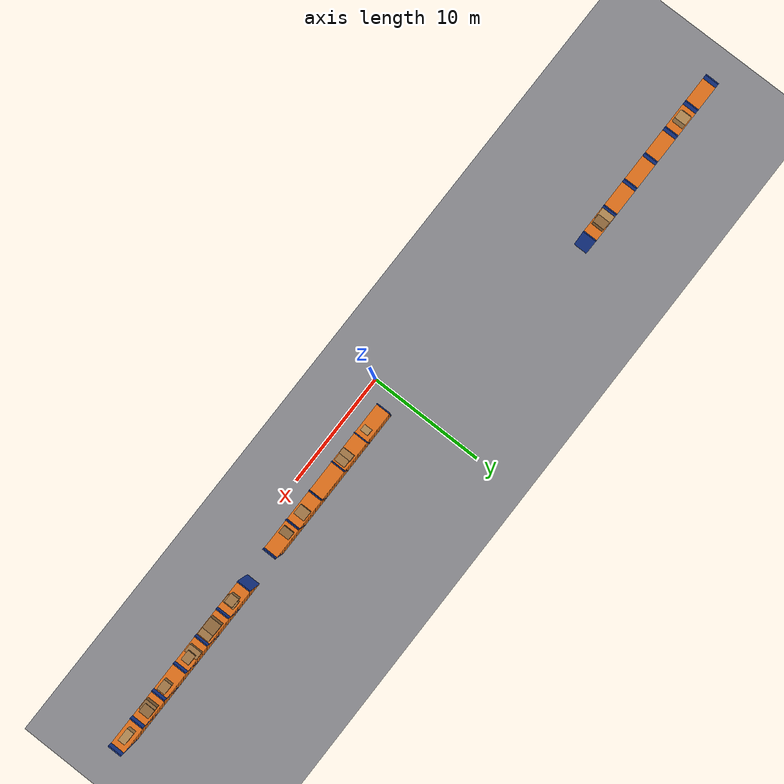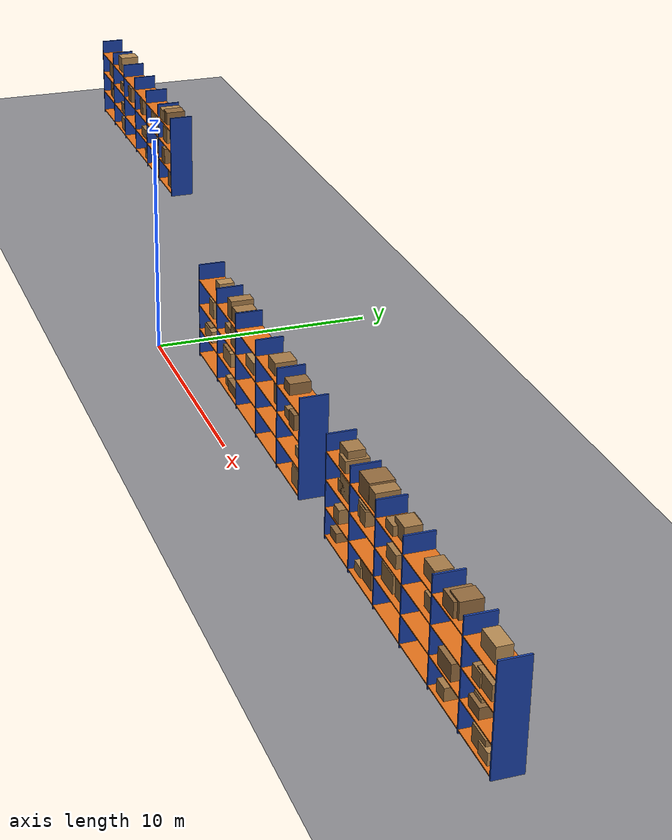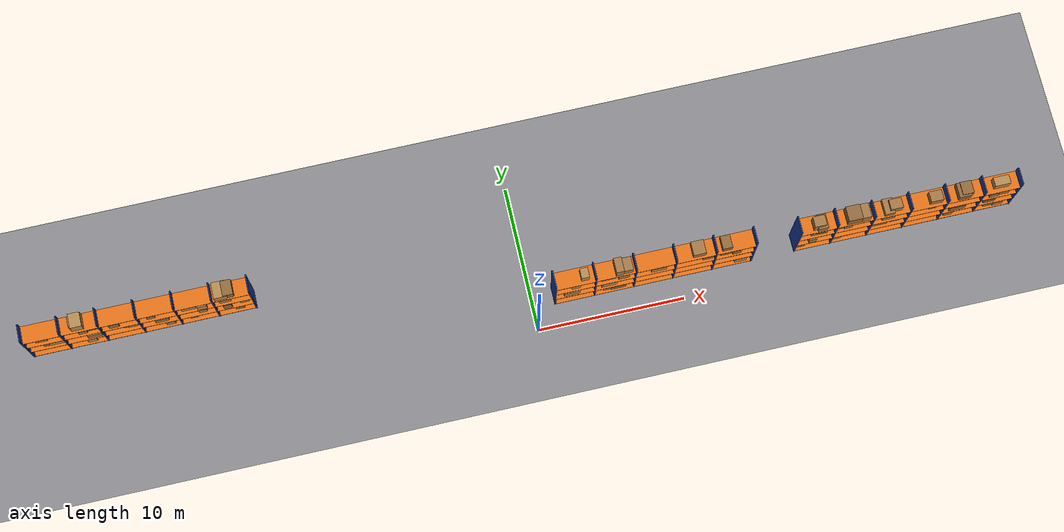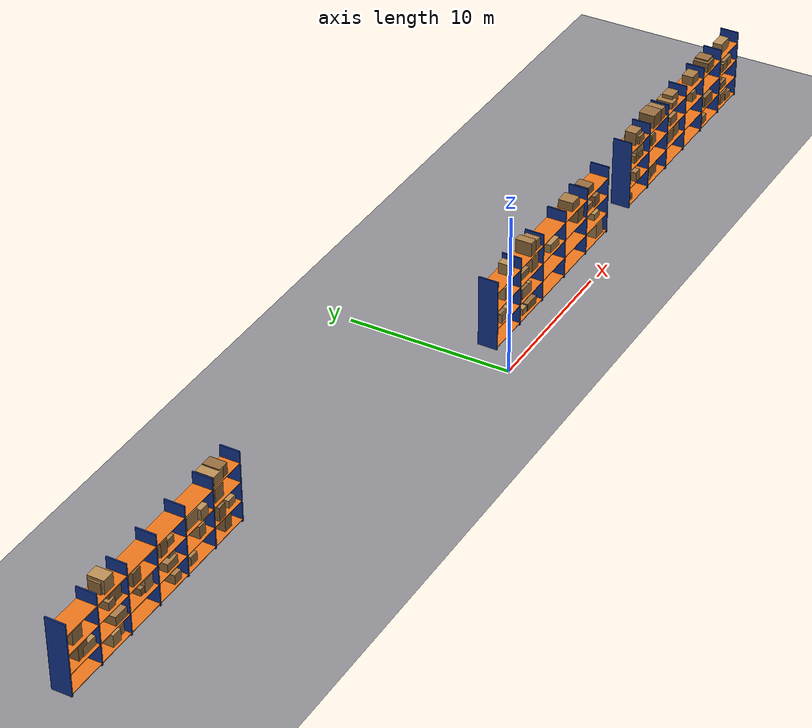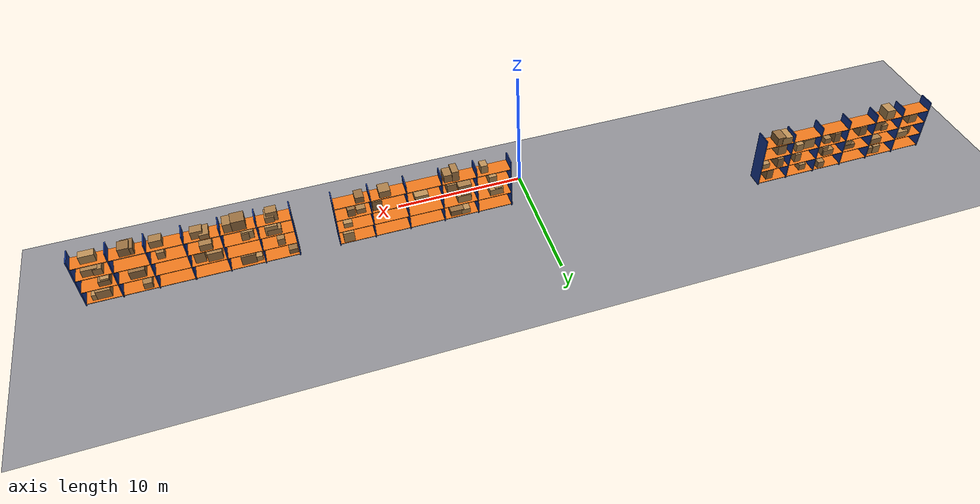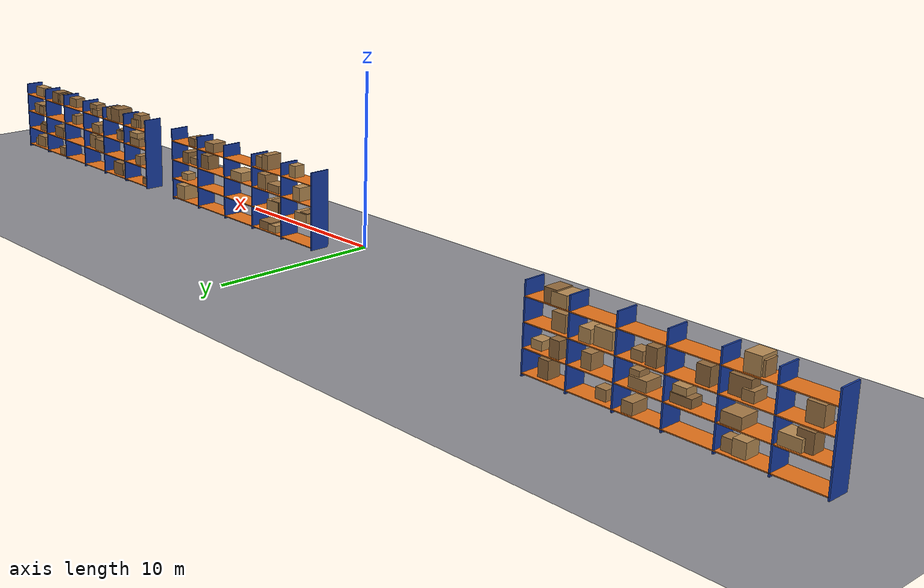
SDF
<sdf version="1.9">
 <world name="warehouse">
  <model name="ground_plane">
   <static>true</static>
   <link name="link">
    <collision name="collision">
     <geometry><plane><normal>0 0 1</normal><size>1 1</size></plane></geometry>
    </collision>
    <visual name="visual">
     <geometry><plane><normal>0 0 1</normal><size>200 100</size></plane></geometry>
     <material>
      <ambient>0.55 0.55 0.57 1</ambient>
      <diffuse>0.55 0.55 0.57 1</diffuse>
      <specular>0.1 0.1 0.1 1</specular>
     </material>
    </visual>
   </link>
  </model>
  <model name="rack18">
   <static>true</static>
   <link name="link">
    <collision name="up0_c">
     <pose>1.500 2.100 2.250 0 0 0</pose>
     <geometry><box><size>0.080 1.200 4.500</size></box></geometry>
    </collision>
    <visual name="up0_v">
     <pose>1.500 2.100 2.250 0 0 0</pose>
     <geometry><box><size>0.080 1.200 4.500</size></box></geometry>
     <material>
      <ambient>0.1 0.25 0.65 1</ambient>
      <diffuse>0.1 0.25 0.65 1</diffuse>
      <specular>0.1 0.1 0.1 1</specular>
     </material>
    </visual>
    <collision name="up1_c">
     <pose>4.200 2.100 2.250 0 0 0</pose>
     <geometry><box><size>0.080 1.200 4.500</size></box></geometry>
    </collision>
    <visual name="up1_v">
     <pose>4.200 2.100 2.250 0 0 0</pose>
     <geometry><box><size>0.080 1.200 4.500</size></box></geometry>
     <material>
      <ambient>0.1 0.25 0.65 1</ambient>
      <diffuse>0.1 0.25 0.65 1</diffuse>
      <specular>0.1 0.1 0.1 1</specular>
     </material>
    </visual>
    <collision name="up2_c">
     <pose>6.900 2.100 2.250 0 0 0</pose>
     <geometry><box><size>0.080 1.200 4.500</size></box></geometry>
    </collision>
    <visual name="up2_v">
     <pose>6.900 2.100 2.250 0 0 0</pose>
     <geometry><box><size>0.080 1.200 4.500</size></box></geometry>
     <material>
      <ambient>0.1 0.25 0.65 1</ambient>
      <diffuse>0.1 0.25 0.65 1</diffuse>
      <specular>0.1 0.1 0.1 1</specular>
     </material>
    </visual>
    <collision name="up3_c">
     <pose>9.600 2.100 2.250 0 0 0</pose>
     <geometry><box><size>0.080 1.200 4.500</size></box></geometry>
    </collision>
    <visual name="up3_v">
     <pose>9.600 2.100 2.250 0 0 0</pose>
     <geometry><box><size>0.080 1.200 4.500</size></box></geometry>
     <material>
      <ambient>0.1 0.25 0.65 1</ambient>
      <diffuse>0.1 0.25 0.65 1</diffuse>
      <specular>0.1 0.1 0.1 1</specular>
     </material>
    </visual>
    <collision name="up4_c">
     <pose>12.300 2.100 2.250 0 0 0</pose>
     <geometry><box><size>0.080 1.200 4.500</size></box></geometry>
    </collision>
    <visual name="up4_v">
     <pose>12.300 2.100 2.250 0 0 0</pose>
     <geometry><box><size>0.080 1.200 4.500</size></box></geometry>
     <material>
      <ambient>0.1 0.25 0.65 1</ambient>
      <diffuse>0.1 0.25 0.65 1</diffuse>
      <specular>0.1 0.1 0.1 1</specular>
     </material>
    </visual>
    <collision name="up5_c">
     <pose>15.000 2.100 2.250 0 0 0</pose>
     <geometry><box><size>0.080 1.200 4.500</size></box></geometry>
    </collision>
    <visual name="up5_v">
     <pose>15.000 2.100 2.250 0 0 0</pose>
     <geometry><box><size>0.080 1.200 4.500</size></box></geometry>
     <material>
      <ambient>0.1 0.25 0.65 1</ambient>
      <diffuse>0.1 0.25 0.65 1</diffuse>
      <specular>0.1 0.1 0.1 1</specular>
     </material>
    </visual>
    <collision name="sh0_c">
     <pose>8.250 2.100 0.150 0 0 0</pose>
     <geometry><box><size>13.500 1.200 0.050</size></box></geometry>
    </collision>
    <visual name="sh0_v">
     <pose>8.250 2.100 0.150 0 0 0</pose>
     <geometry><box><size>13.500 1.200 0.050</size></box></geometry>
     <material>
      <ambient>0.9 0.45 0.1 1</ambient>
      <diffuse>0.9 0.45 0.1 1</diffuse>
      <specular>0.1 0.1 0.1 1</specular>
     </material>
    </visual>
    <collision name="sh1_c">
     <pose>8.250 2.100 1.350 0 0 0</pose>
     <geometry><box><size>13.500 1.200 0.050</size></box></geometry>
    </collision>
    <visual name="sh1_v">
     <pose>8.250 2.100 1.350 0 0 0</pose>
     <geometry><box><size>13.500 1.200 0.050</size></box></geometry>
     <material>
      <ambient>0.9 0.45 0.1 1</ambient>
      <diffuse>0.9 0.45 0.1 1</diffuse>
      <specular>0.1 0.1 0.1 1</specular>
     </material>
    </visual>
    <collision name="sh2_c">
     <pose>8.250 2.100 2.550 0 0 0</pose>
     <geometry><box><size>13.500 1.200 0.050</size></box></geometry>
    </collision>
    <visual name="sh2_v">
     <pose>8.250 2.100 2.550 0 0 0</pose>
     <geometry><box><size>13.500 1.200 0.050</size></box></geometry>
     <material>
      <ambient>0.9 0.45 0.1 1</ambient>
      <diffuse>0.9 0.45 0.1 1</diffuse>
      <specular>0.1 0.1 0.1 1</specular>
     </material>
    </visual>
    <collision name="sh3_c">
     <pose>8.250 2.100 3.750 0 0 0</pose>
     <geometry><box><size>13.500 1.200 0.050</size></box></geometry>
    </collision>
    <visual name="sh3_v">
     <pose>8.250 2.100 3.750 0 0 0</pose>
     <geometry><box><size>13.500 1.200 0.050</size></box></geometry>
     <material>
      <ambient>0.9 0.45 0.1 1</ambient>
      <diffuse>0.9 0.45 0.1 1</diffuse>
      <specular>0.1 0.1 0.1 1</specular>
     </material>
    </visual>
    <collision name="c0_c">
     <pose>2.640 2.058 1.644 0 0 0</pose>
     <geometry><box><size>1.067 0.977 0.538</size></box></geometry>
    </collision>
    <visual name="c0_v">
     <pose>2.640 2.058 1.644 0 0 0</pose>
     <geometry><box><size>1.067 0.977 0.538</size></box></geometry>
     <material>
      <ambient>0.72 0.55 0.33 1</ambient>
      <diffuse>0.72 0.55 0.33 1</diffuse>
      <specular>0.1 0.1 0.1 1</specular>
     </material>
    </visual>
    <collision name="c1_c">
     <pose>2.445 2.053 1.662 0 0 0</pose>
     <geometry><box><size>0.634 0.836 0.573</size></box></geometry>
    </collision>
    <visual name="c1_v">
     <pose>2.445 2.053 1.662 0 0 0</pose>
     <geometry><box><size>0.634 0.836 0.573</size></box></geometry>
     <material>
      <ambient>0.58 0.42 0.24 1</ambient>
      <diffuse>0.58 0.42 0.24 1</diffuse>
      <specular>0.1 0.1 0.1 1</specular>
     </material>
    </visual>
    <collision name="c2_c">
     <pose>2.917 2.135 2.968 0 0 0</pose>
     <geometry><box><size>0.603 0.977 0.787</size></box></geometry>
    </collision>
    <visual name="c2_v">
     <pose>2.917 2.135 2.968 0 0 0</pose>
     <geometry><box><size>0.603 0.977 0.787</size></box></geometry>
     <material>
      <ambient>0.72 0.55 0.33 1</ambient>
      <diffuse>0.72 0.55 0.33 1</diffuse>
      <specular>0.1 0.1 0.1 1</specular>
     </material>
    </visual>
    <collision name="c3_c">
     <pose>3.520 2.097 4.122 0 0 0</pose>
     <geometry><box><size>0.541 0.676 0.694</size></box></geometry>
    </collision>
    <visual name="c3_v">
     <pose>3.520 2.097 4.122 0 0 0</pose>
     <geometry><box><size>0.541 0.676 0.694</size></box></geometry>
     <material>
      <ambient>0.72 0.55 0.33 1</ambient>
      <diffuse>0.72 0.55 0.33 1</diffuse>
      <specular>0.1 0.1 0.1 1</specular>
     </material>
    </visual>
    <collision name="c4_c">
     <pose>5.860 2.099 0.416 0 0 0</pose>
     <geometry><box><size>1.050 0.923 0.483</size></box></geometry>
    </collision>
    <visual name="c4_v">
     <pose>5.860 2.099 0.416 0 0 0</pose>
     <geometry><box><size>1.050 0.923 0.483</size></box></geometry>
     <material>
      <ambient>0.58 0.42 0.24 1</ambient>
      <diffuse>0.58 0.42 0.24 1</diffuse>
      <specular>0.1 0.1 0.1 1</specular>
     </material>
    </visual>
    <collision name="c5_c">
     <pose>5.185 2.129 0.384 0 0 0</pose>
     <geometry><box><size>0.685 0.879 0.418</size></box></geometry>
    </collision>
    <visual name="c5_v">
     <pose>5.185 2.129 0.384 0 0 0</pose>
     <geometry><box><size>0.685 0.879 0.418</size></box></geometry>
     <material>
      <ambient>0.72 0.55 0.33 1</ambient>
      <diffuse>0.72 0.55 0.33 1</diffuse>
      <specular>0.1 0.1 0.1 1</specular>
     </material>
    </visual>
    <collision name="c6_c">
     <pose>5.054 2.054 1.705 0 0 0</pose>
     <geometry><box><size>0.786 0.818 0.661</size></box></geometry>
    </collision>
    <visual name="c6_v">
     <pose>5.054 2.054 1.705 0 0 0</pose>
     <geometry><box><size>0.786 0.818 0.661</size></box></geometry>
     <material>
      <ambient>0.58 0.42 0.24 1</ambient>
      <diffuse>0.58 0.42 0.24 1</diffuse>
      <specular>0.1 0.1 0.1 1</specular>
     </material>
    </visual>
    <collision name="c7_c">
     <pose>5.208 2.079 1.699 0 0 0</pose>
     <geometry><box><size>1.051 0.887 0.649</size></box></geometry>
    </collision>
    <visual name="c7_v">
     <pose>5.208 2.079 1.699 0 0 0</pose>
     <geometry><box><size>1.051 0.887 0.649</size></box></geometry>
     <material>
      <ambient>0.72 0.55 0.33 1</ambient>
      <diffuse>0.72 0.55 0.33 1</diffuse>
      <specular>0.1 0.1 0.1 1</specular>
     </material>
    </visual>
    <collision name="c8_c">
     <pose>6.139 2.099 3.010 0 0 0</pose>
     <geometry><box><size>0.732 0.937 0.870</size></box></geometry>
    </collision>
    <visual name="c8_v">
     <pose>6.139 2.099 3.010 0 0 0</pose>
     <geometry><box><size>0.732 0.937 0.870</size></box></geometry>
     <material>
      <ambient>0.65 0.48 0.28 1</ambient>
      <diffuse>0.65 0.48 0.28 1</diffuse>
      <specular>0.1 0.1 0.1 1</specular>
     </material>
    </visual>
    <collision name="c9_c">
     <pose>5.119 2.143 2.798 0 0 0</pose>
     <geometry><box><size>1.037 0.792 0.446</size></box></geometry>
    </collision>
    <visual name="c9_v">
     <pose>5.119 2.143 2.798 0 0 0</pose>
     <geometry><box><size>1.037 0.792 0.446</size></box></geometry>
     <material>
      <ambient>0.65 0.48 0.28 1</ambient>
      <diffuse>0.65 0.48 0.28 1</diffuse>
      <specular>0.1 0.1 0.1 1</specular>
     </material>
    </visual>
    <collision name="c10_c">
     <pose>5.799 2.082 4.214 0 0 0</pose>
     <geometry><box><size>0.524 0.998 0.878</size></box></geometry>
    </collision>
    <visual name="c10_v">
     <pose>5.799 2.082 4.214 0 0 0</pose>
     <geometry><box><size>0.524 0.998 0.878</size></box></geometry>
     <material>
      <ambient>0.65 0.48 0.28 1</ambient>
      <diffuse>0.65 0.48 0.28 1</diffuse>
      <specular>0.1 0.1 0.1 1</specular>
     </material>
    </visual>
    <collision name="c11_c">
     <pose>6.335 2.074 4.105 0 0 0</pose>
     <geometry><box><size>0.707 0.912 0.660</size></box></geometry>
    </collision>
    <visual name="c11_v">
     <pose>6.335 2.074 4.105 0 0 0</pose>
     <geometry><box><size>0.707 0.912 0.660</size></box></geometry>
     <material>
      <ambient>0.65 0.48 0.28 1</ambient>
      <diffuse>0.65 0.48 0.28 1</diffuse>
      <specular>0.1 0.1 0.1 1</specular>
     </material>
    </visual>
    <collision name="c12_c">
     <pose>8.499 2.133 2.845 0 0 0</pose>
     <geometry><box><size>1.036 1.040 0.541</size></box></geometry>
    </collision>
    <visual name="c12_v">
     <pose>8.499 2.133 2.845 0 0 0</pose>
     <geometry><box><size>1.036 1.040 0.541</size></box></geometry>
     <material>
      <ambient>0.72 0.55 0.33 1</ambient>
      <diffuse>0.72 0.55 0.33 1</diffuse>
      <specular>0.1 0.1 0.1 1</specular>
     </material>
    </visual>
    <collision name="c13_c">
     <pose>11.834 2.083 3.002 0 0 0</pose>
     <geometry><box><size>0.728 0.818 0.855</size></box></geometry>
    </collision>
    <visual name="c13_v">
     <pose>11.834 2.083 3.002 0 0 0</pose>
     <geometry><box><size>0.728 0.818 0.855</size></box></geometry>
     <material>
      <ambient>0.58 0.42 0.24 1</ambient>
      <diffuse>0.58 0.42 0.24 1</diffuse>
      <specular>0.1 0.1 0.1 1</specular>
     </material>
    </visual>
    <collision name="c14_c">
     <pose>11.172 2.137 4.059 0 0 0</pose>
     <geometry><box><size>0.848 0.937 0.568</size></box></geometry>
    </collision>
    <visual name="c14_v">
     <pose>11.172 2.137 4.059 0 0 0</pose>
     <geometry><box><size>0.848 0.937 0.568</size></box></geometry>
     <material>
      <ambient>0.65 0.48 0.28 1</ambient>
      <diffuse>0.65 0.48 0.28 1</diffuse>
      <specular>0.1 0.1 0.1 1</specular>
     </material>
    </visual>
    <collision name="c15_c">
     <pose>14.270 2.130 0.612 0 0 0</pose>
     <geometry><box><size>0.810 1.017 0.875</size></box></geometry>
    </collision>
    <visual name="c15_v">
     <pose>14.270 2.130 0.612 0 0 0</pose>
     <geometry><box><size>0.810 1.017 0.875</size></box></geometry>
     <material>
      <ambient>0.72 0.55 0.33 1</ambient>
      <diffuse>0.72 0.55 0.33 1</diffuse>
      <specular>0.1 0.1 0.1 1</specular>
     </material>
    </visual>
    <collision name="c16_c">
     <pose>14.169 2.068 1.583 0 0 0</pose>
     <geometry><box><size>0.653 0.601 0.416</size></box></geometry>
    </collision>
    <visual name="c16_v">
     <pose>14.169 2.068 1.583 0 0 0</pose>
     <geometry><box><size>0.653 0.601 0.416</size></box></geometry>
     <material>
      <ambient>0.72 0.55 0.33 1</ambient>
      <diffuse>0.72 0.55 0.33 1</diffuse>
      <specular>0.1 0.1 0.1 1</specular>
     </material>
    </visual>
    <collision name="c17_c">
     <pose>13.061 2.075 2.788 0 0 0</pose>
     <geometry><box><size>0.683 0.749 0.427</size></box></geometry>
    </collision>
    <visual name="c17_v">
     <pose>13.061 2.075 2.788 0 0 0</pose>
     <geometry><box><size>0.683 0.749 0.427</size></box></geometry>
     <material>
      <ambient>0.65 0.48 0.28 1</ambient>
      <diffuse>0.65 0.48 0.28 1</diffuse>
      <specular>0.1 0.1 0.1 1</specular>
     </material>
    </visual>
    <collision name="c18_c">
     <pose>13.779 2.080 2.913 0 0 0</pose>
     <geometry><box><size>0.576 0.936 0.675</size></box></geometry>
    </collision>
    <visual name="c18_v">
     <pose>13.779 2.080 2.913 0 0 0</pose>
     <geometry><box><size>0.576 0.936 0.675</size></box></geometry>
     <material>
      <ambient>0.58 0.42 0.24 1</ambient>
      <diffuse>0.58 0.42 0.24 1</diffuse>
      <specular>0.1 0.1 0.1 1</specular>
     </material>
    </visual>
    <collision name="c19_c">
     <pose>13.050 2.120 4.025 0 0 0</pose>
     <geometry><box><size>0.654 0.899 0.500</size></box></geometry>
    </collision>
    <visual name="c19_v">
     <pose>13.050 2.120 4.025 0 0 0</pose>
     <geometry><box><size>0.654 0.899 0.500</size></box></geometry>
     <material>
      <ambient>0.58 0.42 0.24 1</ambient>
      <diffuse>0.58 0.42 0.24 1</diffuse>
      <specular>0.1 0.1 0.1 1</specular>
     </material>
    </visual>
   </link>
  </model>
  <model name="rack19">
   <static>true</static>
   <link name="link">
    <collision name="up0_c">
     <pose>18.000 2.100 2.250 0 0 0</pose>
     <geometry><box><size>0.080 1.200 4.500</size></box></geometry>
    </collision>
    <visual name="up0_v">
     <pose>18.000 2.100 2.250 0 0 0</pose>
     <geometry><box><size>0.080 1.200 4.500</size></box></geometry>
     <material>
      <ambient>0.1 0.25 0.65 1</ambient>
      <diffuse>0.1 0.25 0.65 1</diffuse>
      <specular>0.1 0.1 0.1 1</specular>
     </material>
    </visual>
    <collision name="up1_c">
     <pose>20.500 2.100 2.250 0 0 0</pose>
     <geometry><box><size>0.080 1.200 4.500</size></box></geometry>
    </collision>
    <visual name="up1_v">
     <pose>20.500 2.100 2.250 0 0 0</pose>
     <geometry><box><size>0.080 1.200 4.500</size></box></geometry>
     <material>
      <ambient>0.1 0.25 0.65 1</ambient>
      <diffuse>0.1 0.25 0.65 1</diffuse>
      <specular>0.1 0.1 0.1 1</specular>
     </material>
    </visual>
    <collision name="up2_c">
     <pose>23.000 2.100 2.250 0 0 0</pose>
     <geometry><box><size>0.080 1.200 4.500</size></box></geometry>
    </collision>
    <visual name="up2_v">
     <pose>23.000 2.100 2.250 0 0 0</pose>
     <geometry><box><size>0.080 1.200 4.500</size></box></geometry>
     <material>
      <ambient>0.1 0.25 0.65 1</ambient>
      <diffuse>0.1 0.25 0.65 1</diffuse>
      <specular>0.1 0.1 0.1 1</specular>
     </material>
    </visual>
    <collision name="up3_c">
     <pose>25.500 2.100 2.250 0 0 0</pose>
     <geometry><box><size>0.080 1.200 4.500</size></box></geometry>
    </collision>
    <visual name="up3_v">
     <pose>25.500 2.100 2.250 0 0 0</pose>
     <geometry><box><size>0.080 1.200 4.500</size></box></geometry>
     <material>
      <ambient>0.1 0.25 0.65 1</ambient>
      <diffuse>0.1 0.25 0.65 1</diffuse>
      <specular>0.1 0.1 0.1 1</specular>
     </material>
    </visual>
    <collision name="up4_c">
     <pose>28.000 2.100 2.250 0 0 0</pose>
     <geometry><box><size>0.080 1.200 4.500</size></box></geometry>
    </collision>
    <visual name="up4_v">
     <pose>28.000 2.100 2.250 0 0 0</pose>
     <geometry><box><size>0.080 1.200 4.500</size></box></geometry>
     <material>
      <ambient>0.1 0.25 0.65 1</ambient>
      <diffuse>0.1 0.25 0.65 1</diffuse>
      <specular>0.1 0.1 0.1 1</specular>
     </material>
    </visual>
    <collision name="up5_c">
     <pose>30.500 2.100 2.250 0 0 0</pose>
     <geometry><box><size>0.080 1.200 4.500</size></box></geometry>
    </collision>
    <visual name="up5_v">
     <pose>30.500 2.100 2.250 0 0 0</pose>
     <geometry><box><size>0.080 1.200 4.500</size></box></geometry>
     <material>
      <ambient>0.1 0.25 0.65 1</ambient>
      <diffuse>0.1 0.25 0.65 1</diffuse>
      <specular>0.1 0.1 0.1 1</specular>
     </material>
    </visual>
    <collision name="up6_c">
     <pose>33.000 2.100 2.250 0 0 0</pose>
     <geometry><box><size>0.080 1.200 4.500</size></box></geometry>
    </collision>
    <visual name="up6_v">
     <pose>33.000 2.100 2.250 0 0 0</pose>
     <geometry><box><size>0.080 1.200 4.500</size></box></geometry>
     <material>
      <ambient>0.1 0.25 0.65 1</ambient>
      <diffuse>0.1 0.25 0.65 1</diffuse>
      <specular>0.1 0.1 0.1 1</specular>
     </material>
    </visual>
    <collision name="sh0_c">
     <pose>25.500 2.100 0.150 0 0 0</pose>
     <geometry><box><size>15.000 1.200 0.050</size></box></geometry>
    </collision>
    <visual name="sh0_v">
     <pose>25.500 2.100 0.150 0 0 0</pose>
     <geometry><box><size>15.000 1.200 0.050</size></box></geometry>
     <material>
      <ambient>0.9 0.45 0.1 1</ambient>
      <diffuse>0.9 0.45 0.1 1</diffuse>
      <specular>0.1 0.1 0.1 1</specular>
     </material>
    </visual>
    <collision name="sh1_c">
     <pose>25.500 2.100 1.350 0 0 0</pose>
     <geometry><box><size>15.000 1.200 0.050</size></box></geometry>
    </collision>
    <visual name="sh1_v">
     <pose>25.500 2.100 1.350 0 0 0</pose>
     <geometry><box><size>15.000 1.200 0.050</size></box></geometry>
     <material>
      <ambient>0.9 0.45 0.1 1</ambient>
      <diffuse>0.9 0.45 0.1 1</diffuse>
      <specular>0.1 0.1 0.1 1</specular>
     </material>
    </visual>
    <collision name="sh2_c">
     <pose>25.500 2.100 2.550 0 0 0</pose>
     <geometry><box><size>15.000 1.200 0.050</size></box></geometry>
    </collision>
    <visual name="sh2_v">
     <pose>25.500 2.100 2.550 0 0 0</pose>
     <geometry><box><size>15.000 1.200 0.050</size></box></geometry>
     <material>
      <ambient>0.9 0.45 0.1 1</ambient>
      <diffuse>0.9 0.45 0.1 1</diffuse>
      <specular>0.1 0.1 0.1 1</specular>
     </material>
    </visual>
    <collision name="sh3_c">
     <pose>25.500 2.100 3.750 0 0 0</pose>
     <geometry><box><size>15.000 1.200 0.050</size></box></geometry>
    </collision>
    <visual name="sh3_v">
     <pose>25.500 2.100 3.750 0 0 0</pose>
     <geometry><box><size>15.000 1.200 0.050</size></box></geometry>
     <material>
      <ambient>0.9 0.45 0.1 1</ambient>
      <diffuse>0.9 0.45 0.1 1</diffuse>
      <specular>0.1 0.1 0.1 1</specular>
     </material>
    </visual>
    <collision name="c0_c">
     <pose>18.423 2.092 0.379 0 0 0</pose>
     <geometry><box><size>0.632 0.803 0.409</size></box></geometry>
    </collision>
    <visual name="c0_v">
     <pose>18.423 2.092 0.379 0 0 0</pose>
     <geometry><box><size>0.632 0.803 0.409</size></box></geometry>
     <material>
      <ambient>0.58 0.42 0.24 1</ambient>
      <diffuse>0.58 0.42 0.24 1</diffuse>
      <specular>0.1 0.1 0.1 1</specular>
     </material>
    </visual>
    <collision name="c1_c">
     <pose>19.099 2.066 1.674 0 0 0</pose>
     <geometry><box><size>0.532 1.059 0.598</size></box></geometry>
    </collision>
    <visual name="c1_v">
     <pose>19.099 2.066 1.674 0 0 0</pose>
     <geometry><box><size>0.532 1.059 0.598</size></box></geometry>
     <material>
      <ambient>0.65 0.48 0.28 1</ambient>
      <diffuse>0.65 0.48 0.28 1</diffuse>
      <specular>0.1 0.1 0.1 1</specular>
     </material>
    </visual>
    <collision name="c2_c">
     <pose>19.373 2.132 2.823 0 0 0</pose>
     <geometry><box><size>1.011 0.932 0.496</size></box></geometry>
    </collision>
    <visual name="c2_v">
     <pose>19.373 2.132 2.823 0 0 0</pose>
     <geometry><box><size>1.011 0.932 0.496</size></box></geometry>
     <material>
      <ambient>0.65 0.48 0.28 1</ambient>
      <diffuse>0.65 0.48 0.28 1</diffuse>
      <specular>0.1 0.1 0.1 1</specular>
     </material>
    </visual>
    <collision name="c3_c">
     <pose>19.547 2.121 2.998 0 0 0</pose>
     <geometry><box><size>0.903 0.910 0.847</size></box></geometry>
    </collision>
    <visual name="c3_v">
     <pose>19.547 2.121 2.998 0 0 0</pose>
     <geometry><box><size>0.903 0.910 0.847</size></box></geometry>
     <material>
      <ambient>0.72 0.55 0.33 1</ambient>
      <diffuse>0.72 0.55 0.33 1</diffuse>
      <specular>0.1 0.1 0.1 1</specular>
     </material>
    </visual>
    <collision name="c4_c">
     <pose>19.306 2.052 4.190 0 0 0</pose>
     <geometry><box><size>0.800 0.709 0.830</size></box></geometry>
    </collision>
    <visual name="c4_v">
     <pose>19.306 2.052 4.190 0 0 0</pose>
     <geometry><box><size>0.800 0.709 0.830</size></box></geometry>
     <material>
      <ambient>0.65 0.48 0.28 1</ambient>
      <diffuse>0.65 0.48 0.28 1</diffuse>
      <specular>0.1 0.1 0.1 1</specular>
     </material>
    </visual>
    <collision name="c5_c">
     <pose>19.501 2.053 4.030 0 0 0</pose>
     <geometry><box><size>0.665 0.969 0.510</size></box></geometry>
    </collision>
    <visual name="c5_v">
     <pose>19.501 2.053 4.030 0 0 0</pose>
     <geometry><box><size>0.665 0.969 0.510</size></box></geometry>
     <material>
      <ambient>0.65 0.48 0.28 1</ambient>
      <diffuse>0.65 0.48 0.28 1</diffuse>
      <specular>0.1 0.1 0.1 1</specular>
     </material>
    </visual>
    <collision name="c6_c">
     <pose>20.969 2.065 0.385 0 0 0</pose>
     <geometry><box><size>0.627 0.731 0.421</size></box></geometry>
    </collision>
    <visual name="c6_v">
     <pose>20.969 2.065 0.385 0 0 0</pose>
     <geometry><box><size>0.627 0.731 0.421</size></box></geometry>
     <material>
      <ambient>0.72 0.55 0.33 1</ambient>
      <diffuse>0.72 0.55 0.33 1</diffuse>
      <specular>0.1 0.1 0.1 1</specular>
     </material>
    </visual>
    <collision name="c7_c">
     <pose>21.633 2.136 0.588 0 0 0</pose>
     <geometry><box><size>1.063 0.751 0.826</size></box></geometry>
    </collision>
    <visual name="c7_v">
     <pose>21.633 2.136 0.588 0 0 0</pose>
     <geometry><box><size>1.063 0.751 0.826</size></box></geometry>
     <material>
      <ambient>0.58 0.42 0.24 1</ambient>
      <diffuse>0.58 0.42 0.24 1</diffuse>
      <specular>0.1 0.1 0.1 1</specular>
     </material>
    </visual>
    <collision name="c8_c">
     <pose>21.209 2.056 2.920 0 0 0</pose>
     <geometry><box><size>0.790 0.676 0.690</size></box></geometry>
    </collision>
    <visual name="c8_v">
     <pose>21.209 2.056 2.920 0 0 0</pose>
     <geometry><box><size>0.790 0.676 0.690</size></box></geometry>
     <material>
      <ambient>0.72 0.55 0.33 1</ambient>
      <diffuse>0.72 0.55 0.33 1</diffuse>
      <specular>0.1 0.1 0.1 1</specular>
     </material>
    </visual>
    <collision name="c9_c">
     <pose>21.412 2.077 2.888 0 0 0</pose>
     <geometry><box><size>0.545 0.847 0.627</size></box></geometry>
    </collision>
    <visual name="c9_v">
     <pose>21.412 2.077 2.888 0 0 0</pose>
     <geometry><box><size>0.545 0.847 0.627</size></box></geometry>
     <material>
      <ambient>0.65 0.48 0.28 1</ambient>
      <diffuse>0.65 0.48 0.28 1</diffuse>
      <specular>0.1 0.1 0.1 1</specular>
     </material>
    </visual>
    <collision name="c10_c">
     <pose>21.648 2.087 4.202 0 0 0</pose>
     <geometry><box><size>0.971 1.008 0.854</size></box></geometry>
    </collision>
    <visual name="c10_v">
     <pose>21.648 2.087 4.202 0 0 0</pose>
     <geometry><box><size>0.971 1.008 0.854</size></box></geometry>
     <material>
      <ambient>0.58 0.42 0.24 1</ambient>
      <diffuse>0.58 0.42 0.24 1</diffuse>
      <specular>0.1 0.1 0.1 1</specular>
     </material>
    </visual>
    <collision name="c11_c">
     <pose>22.245 2.079 4.160 0 0 0</pose>
     <geometry><box><size>0.932 0.980 0.771</size></box></geometry>
    </collision>
    <visual name="c11_v">
     <pose>22.245 2.079 4.160 0 0 0</pose>
     <geometry><box><size>0.932 0.980 0.771</size></box></geometry>
     <material>
      <ambient>0.65 0.48 0.28 1</ambient>
      <diffuse>0.65 0.48 0.28 1</diffuse>
      <specular>0.1 0.1 0.1 1</specular>
     </material>
    </visual>
    <collision name="c12_c">
     <pose>23.778 2.137 1.751 0 0 0</pose>
     <geometry><box><size>1.048 0.884 0.753</size></box></geometry>
    </collision>
    <visual name="c12_v">
     <pose>23.778 2.137 1.751 0 0 0</pose>
     <geometry><box><size>1.048 0.884 0.753</size></box></geometry>
     <material>
      <ambient>0.65 0.48 0.28 1</ambient>
      <diffuse>0.65 0.48 0.28 1</diffuse>
      <specular>0.1 0.1 0.1 1</specular>
     </material>
    </visual>
    <collision name="c13_c">
     <pose>24.803 2.098 1.825 0 0 0</pose>
     <geometry><box><size>0.760 0.701 0.899</size></box></geometry>
    </collision>
    <visual name="c13_v">
     <pose>24.803 2.098 1.825 0 0 0</pose>
     <geometry><box><size>0.760 0.701 0.899</size></box></geometry>
     <material>
      <ambient>0.65 0.48 0.28 1</ambient>
      <diffuse>0.65 0.48 0.28 1</diffuse>
      <specular>0.1 0.1 0.1 1</specular>
     </material>
    </visual>
    <collision name="c14_c">
     <pose>24.164 2.127 2.856 0 0 0</pose>
     <geometry><box><size>0.872 0.946 0.562</size></box></geometry>
    </collision>
    <visual name="c14_v">
     <pose>24.164 2.127 2.856 0 0 0</pose>
     <geometry><box><size>0.872 0.946 0.562</size></box></geometry>
     <material>
      <ambient>0.65 0.48 0.28 1</ambient>
      <diffuse>0.65 0.48 0.28 1</diffuse>
      <specular>0.1 0.1 0.1 1</specular>
     </material>
    </visual>
    <collision name="c15_c">
     <pose>24.513 2.126 4.101 0 0 0</pose>
     <geometry><box><size>0.838 0.692 0.652</size></box></geometry>
    </collision>
    <visual name="c15_v">
     <pose>24.513 2.126 4.101 0 0 0</pose>
     <geometry><box><size>0.838 0.692 0.652</size></box></geometry>
     <material>
      <ambient>0.65 0.48 0.28 1</ambient>
      <diffuse>0.65 0.48 0.28 1</diffuse>
      <specular>0.1 0.1 0.1 1</specular>
     </material>
    </visual>
    <collision name="c16_c">
     <pose>24.040 2.133 3.978 0 0 0</pose>
     <geometry><box><size>0.664 1.072 0.407</size></box></geometry>
    </collision>
    <visual name="c16_v">
     <pose>24.040 2.133 3.978 0 0 0</pose>
     <geometry><box><size>0.664 1.072 0.407</size></box></geometry>
     <material>
      <ambient>0.65 0.48 0.28 1</ambient>
      <diffuse>0.65 0.48 0.28 1</diffuse>
      <specular>0.1 0.1 0.1 1</specular>
     </material>
    </visual>
    <collision name="c17_c">
     <pose>27.217 2.063 2.880 0 0 0</pose>
     <geometry><box><size>0.540 0.678 0.609</size></box></geometry>
    </collision>
    <visual name="c17_v">
     <pose>27.217 2.063 2.880 0 0 0</pose>
     <geometry><box><size>0.540 0.678 0.609</size></box></geometry>
     <material>
      <ambient>0.65 0.48 0.28 1</ambient>
      <diffuse>0.65 0.48 0.28 1</diffuse>
      <specular>0.1 0.1 0.1 1</specular>
     </material>
    </visual>
    <collision name="c18_c">
     <pose>27.251 2.067 4.073 0 0 0</pose>
     <geometry><box><size>0.861 0.708 0.596</size></box></geometry>
    </collision>
    <visual name="c18_v">
     <pose>27.251 2.067 4.073 0 0 0</pose>
     <geometry><box><size>0.861 0.708 0.596</size></box></geometry>
     <material>
      <ambient>0.65 0.48 0.28 1</ambient>
      <diffuse>0.65 0.48 0.28 1</diffuse>
      <specular>0.1 0.1 0.1 1</specular>
     </material>
    </visual>
    <collision name="c19_c">
     <pose>28.729 2.111 0.436 0 0 0</pose>
     <geometry><box><size>0.622 0.941 0.522</size></box></geometry>
    </collision>
    <visual name="c19_v">
     <pose>28.729 2.111 0.436 0 0 0</pose>
     <geometry><box><size>0.622 0.941 0.522</size></box></geometry>
     <material>
      <ambient>0.65 0.48 0.28 1</ambient>
      <diffuse>0.65 0.48 0.28 1</diffuse>
      <specular>0.1 0.1 0.1 1</specular>
     </material>
    </visual>
    <collision name="c20_c">
     <pose>29.096 2.058 1.719 0 0 0</pose>
     <geometry><box><size>1.095 0.976 0.687</size></box></geometry>
    </collision>
    <visual name="c20_v">
     <pose>29.096 2.058 1.719 0 0 0</pose>
     <geometry><box><size>1.095 0.976 0.687</size></box></geometry>
     <material>
      <ambient>0.58 0.42 0.24 1</ambient>
      <diffuse>0.58 0.42 0.24 1</diffuse>
      <specular>0.1 0.1 0.1 1</specular>
     </material>
    </visual>
    <collision name="c21_c">
     <pose>29.342 2.143 4.119 0 0 0</pose>
     <geometry><box><size>0.760 0.878 0.688</size></box></geometry>
    </collision>
    <visual name="c21_v">
     <pose>29.342 2.143 4.119 0 0 0</pose>
     <geometry><box><size>0.760 0.878 0.688</size></box></geometry>
     <material>
      <ambient>0.58 0.42 0.24 1</ambient>
      <diffuse>0.58 0.42 0.24 1</diffuse>
      <specular>0.1 0.1 0.1 1</specular>
     </material>
    </visual>
    <collision name="c22_c">
     <pose>29.147 2.072 4.084 0 0 0</pose>
     <geometry><box><size>0.853 0.998 0.618</size></box></geometry>
    </collision>
    <visual name="c22_v">
     <pose>29.147 2.072 4.084 0 0 0</pose>
     <geometry><box><size>0.853 0.998 0.618</size></box></geometry>
     <material>
      <ambient>0.58 0.42 0.24 1</ambient>
      <diffuse>0.58 0.42 0.24 1</diffuse>
      <specular>0.1 0.1 0.1 1</specular>
     </material>
    </visual>
    <collision name="c23_c">
     <pose>32.175 2.055 0.421 0 0 0</pose>
     <geometry><box><size>0.700 0.884 0.492</size></box></geometry>
    </collision>
    <visual name="c23_v">
     <pose>32.175 2.055 0.421 0 0 0</pose>
     <geometry><box><size>0.700 0.884 0.492</size></box></geometry>
     <material>
      <ambient>0.72 0.55 0.33 1</ambient>
      <diffuse>0.72 0.55 0.33 1</diffuse>
      <specular>0.1 0.1 0.1 1</specular>
     </material>
    </visual>
    <collision name="c24_c">
     <pose>31.707 2.087 0.541 0 0 0</pose>
     <geometry><box><size>1.018 0.832 0.732</size></box></geometry>
    </collision>
    <visual name="c24_v">
     <pose>31.707 2.087 0.541 0 0 0</pose>
     <geometry><box><size>1.018 0.832 0.732</size></box></geometry>
     <material>
      <ambient>0.65 0.48 0.28 1</ambient>
      <diffuse>0.65 0.48 0.28 1</diffuse>
      <specular>0.1 0.1 0.1 1</specular>
     </material>
    </visual>
    <collision name="c25_c">
     <pose>31.337 2.061 1.607 0 0 0</pose>
     <geometry><box><size>0.822 0.899 0.463</size></box></geometry>
    </collision>
    <visual name="c25_v">
     <pose>31.337 2.061 1.607 0 0 0</pose>
     <geometry><box><size>0.822 0.899 0.463</size></box></geometry>
     <material>
      <ambient>0.58 0.42 0.24 1</ambient>
      <diffuse>0.58 0.42 0.24 1</diffuse>
      <specular>0.1 0.1 0.1 1</specular>
     </material>
    </visual>
    <collision name="c26_c">
     <pose>31.251 2.134 1.681 0 0 0</pose>
     <geometry><box><size>0.553 0.713 0.612</size></box></geometry>
    </collision>
    <visual name="c26_v">
     <pose>31.251 2.134 1.681 0 0 0</pose>
     <geometry><box><size>0.553 0.713 0.612</size></box></geometry>
     <material>
      <ambient>0.72 0.55 0.33 1</ambient>
      <diffuse>0.72 0.55 0.33 1</diffuse>
      <specular>0.1 0.1 0.1 1</specular>
     </material>
    </visual>
    <collision name="c27_c">
     <pose>31.413 2.071 2.852 0 0 0</pose>
     <geometry><box><size>0.622 0.949 0.554</size></box></geometry>
    </collision>
    <visual name="c27_v">
     <pose>31.413 2.071 2.852 0 0 0</pose>
     <geometry><box><size>0.622 0.949 0.554</size></box></geometry>
     <material>
      <ambient>0.65 0.48 0.28 1</ambient>
      <diffuse>0.65 0.48 0.28 1</diffuse>
      <specular>0.1 0.1 0.1 1</specular>
     </material>
    </visual>
    <collision name="c28_c">
     <pose>31.927 2.067 2.880 0 0 0</pose>
     <geometry><box><size>1.099 0.828 0.610</size></box></geometry>
    </collision>
    <visual name="c28_v">
     <pose>31.927 2.067 2.880 0 0 0</pose>
     <geometry><box><size>1.099 0.828 0.610</size></box></geometry>
     <material>
      <ambient>0.65 0.48 0.28 1</ambient>
      <diffuse>0.65 0.48 0.28 1</diffuse>
      <specular>0.1 0.1 0.1 1</specular>
     </material>
    </visual>
    <collision name="c29_c">
     <pose>31.732 2.105 4.099 0 0 0</pose>
     <geometry><box><size>1.060 0.609 0.648</size></box></geometry>
    </collision>
    <visual name="c29_v">
     <pose>31.732 2.105 4.099 0 0 0</pose>
     <geometry><box><size>1.060 0.609 0.648</size></box></geometry>
     <material>
      <ambient>0.72 0.55 0.33 1</ambient>
      <diffuse>0.72 0.55 0.33 1</diffuse>
      <specular>0.1 0.1 0.1 1</specular>
     </material>
    </visual>
   </link>
  </model>
  <model name="rack20">
   <static>true</static>
   <link name="link">
    <collision name="up0_c">
     <pose>-33.000 6.300 2.250 0 0 0</pose>
     <geometry><box><size>0.080 1.200 4.500</size></box></geometry>
    </collision>
    <visual name="up0_v">
     <pose>-33.000 6.300 2.250 0 0 0</pose>
     <geometry><box><size>0.080 1.200 4.500</size></box></geometry>
     <material>
      <ambient>0.1 0.25 0.65 1</ambient>
      <diffuse>0.1 0.25 0.65 1</diffuse>
      <specular>0.1 0.1 0.1 1</specular>
     </material>
    </visual>
    <collision name="up1_c">
     <pose>-30.500 6.300 2.250 0 0 0</pose>
     <geometry><box><size>0.080 1.200 4.500</size></box></geometry>
    </collision>
    <visual name="up1_v">
     <pose>-30.500 6.300 2.250 0 0 0</pose>
     <geometry><box><size>0.080 1.200 4.500</size></box></geometry>
     <material>
      <ambient>0.1 0.25 0.65 1</ambient>
      <diffuse>0.1 0.25 0.65 1</diffuse>
      <specular>0.1 0.1 0.1 1</specular>
     </material>
    </visual>
    <collision name="up2_c">
     <pose>-28.000 6.300 2.250 0 0 0</pose>
     <geometry><box><size>0.080 1.200 4.500</size></box></geometry>
    </collision>
    <visual name="up2_v">
     <pose>-28.000 6.300 2.250 0 0 0</pose>
     <geometry><box><size>0.080 1.200 4.500</size></box></geometry>
     <material>
      <ambient>0.1 0.25 0.65 1</ambient>
      <diffuse>0.1 0.25 0.65 1</diffuse>
      <specular>0.1 0.1 0.1 1</specular>
     </material>
    </visual>
    <collision name="up3_c">
     <pose>-25.500 6.300 2.250 0 0 0</pose>
     <geometry><box><size>0.080 1.200 4.500</size></box></geometry>
    </collision>
    <visual name="up3_v">
     <pose>-25.500 6.300 2.250 0 0 0</pose>
     <geometry><box><size>0.080 1.200 4.500</size></box></geometry>
     <material>
      <ambient>0.1 0.25 0.65 1</ambient>
      <diffuse>0.1 0.25 0.65 1</diffuse>
      <specular>0.1 0.1 0.1 1</specular>
     </material>
    </visual>
    <collision name="up4_c">
     <pose>-23.000 6.300 2.250 0 0 0</pose>
     <geometry><box><size>0.080 1.200 4.500</size></box></geometry>
    </collision>
    <visual name="up4_v">
     <pose>-23.000 6.300 2.250 0 0 0</pose>
     <geometry><box><size>0.080 1.200 4.500</size></box></geometry>
     <material>
      <ambient>0.1 0.25 0.65 1</ambient>
      <diffuse>0.1 0.25 0.65 1</diffuse>
      <specular>0.1 0.1 0.1 1</specular>
     </material>
    </visual>
    <collision name="up5_c">
     <pose>-20.500 6.300 2.250 0 0 0</pose>
     <geometry><box><size>0.080 1.200 4.500</size></box></geometry>
    </collision>
    <visual name="up5_v">
     <pose>-20.500 6.300 2.250 0 0 0</pose>
     <geometry><box><size>0.080 1.200 4.500</size></box></geometry>
     <material>
      <ambient>0.1 0.25 0.65 1</ambient>
      <diffuse>0.1 0.25 0.65 1</diffuse>
      <specular>0.1 0.1 0.1 1</specular>
     </material>
    </visual>
    <collision name="up6_c">
     <pose>-18.000 6.300 2.250 0 0 0</pose>
     <geometry><box><size>0.080 1.200 4.500</size></box></geometry>
    </collision>
    <visual name="up6_v">
     <pose>-18.000 6.300 2.250 0 0 0</pose>
     <geometry><box><size>0.080 1.200 4.500</size></box></geometry>
     <material>
      <ambient>0.1 0.25 0.65 1</ambient>
      <diffuse>0.1 0.25 0.65 1</diffuse>
      <specular>0.1 0.1 0.1 1</specular>
     </material>
    </visual>
    <collision name="sh0_c">
     <pose>-25.500 6.300 0.150 0 0 0</pose>
     <geometry><box><size>15.000 1.200 0.050</size></box></geometry>
    </collision>
    <visual name="sh0_v">
     <pose>-25.500 6.300 0.150 0 0 0</pose>
     <geometry><box><size>15.000 1.200 0.050</size></box></geometry>
     <material>
      <ambient>0.9 0.45 0.1 1</ambient>
      <diffuse>0.9 0.45 0.1 1</diffuse>
      <specular>0.1 0.1 0.1 1</specular>
     </material>
    </visual>
    <collision name="sh1_c">
     <pose>-25.500 6.300 1.350 0 0 0</pose>
     <geometry><box><size>15.000 1.200 0.050</size></box></geometry>
    </collision>
    <visual name="sh1_v">
     <pose>-25.500 6.300 1.350 0 0 0</pose>
     <geometry><box><size>15.000 1.200 0.050</size></box></geometry>
     <material>
      <ambient>0.9 0.45 0.1 1</ambient>
      <diffuse>0.9 0.45 0.1 1</diffuse>
      <specular>0.1 0.1 0.1 1</specular>
     </material>
    </visual>
    <collision name="sh2_c">
     <pose>-25.500 6.300 2.550 0 0 0</pose>
     <geometry><box><size>15.000 1.200 0.050</size></box></geometry>
    </collision>
    <visual name="sh2_v">
     <pose>-25.500 6.300 2.550 0 0 0</pose>
     <geometry><box><size>15.000 1.200 0.050</size></box></geometry>
     <material>
      <ambient>0.9 0.45 0.1 1</ambient>
      <diffuse>0.9 0.45 0.1 1</diffuse>
      <specular>0.1 0.1 0.1 1</specular>
     </material>
    </visual>
    <collision name="sh3_c">
     <pose>-25.500 6.300 3.750 0 0 0</pose>
     <geometry><box><size>15.000 1.200 0.050</size></box></geometry>
    </collision>
    <visual name="sh3_v">
     <pose>-25.500 6.300 3.750 0 0 0</pose>
     <geometry><box><size>15.000 1.200 0.050</size></box></geometry>
     <material>
      <ambient>0.9 0.45 0.1 1</ambient>
      <diffuse>0.9 0.45 0.1 1</diffuse>
      <specular>0.1 0.1 0.1 1</specular>
     </material>
    </visual>
    <collision name="c0_c">
     <pose>-31.656 6.254 1.825 0 0 0</pose>
     <geometry><box><size>0.734 0.719 0.899</size></box></geometry>
    </collision>
    <visual name="c0_v">
     <pose>-31.656 6.254 1.825 0 0 0</pose>
     <geometry><box><size>0.734 0.719 0.899</size></box></geometry>
     <material>
      <ambient>0.58 0.42 0.24 1</ambient>
      <diffuse>0.58 0.42 0.24 1</diffuse>
      <specular>0.1 0.1 0.1 1</specular>
     </material>
    </visual>
    <collision name="c1_c">
     <pose>-31.146 6.341 1.654 0 0 0</pose>
     <geometry><box><size>1.030 0.924 0.558</size></box></geometry>
    </collision>
    <visual name="c1_v">
     <pose>-31.146 6.341 1.654 0 0 0</pose>
     <geometry><box><size>1.030 0.924 0.558</size></box></geometry>
     <material>
      <ambient>0.72 0.55 0.33 1</ambient>
      <diffuse>0.72 0.55 0.33 1</diffuse>
      <specular>0.1 0.1 0.1 1</specular>
     </material>
    </visual>
    <collision name="c2_c">
     <pose>-31.930 6.259 3.023 0 0 0</pose>
     <geometry><box><size>0.771 0.672 0.897</size></box></geometry>
    </collision>
    <visual name="c2_v">
     <pose>-31.930 6.259 3.023 0 0 0</pose>
     <geometry><box><size>0.771 0.672 0.897</size></box></geometry>
     <material>
      <ambient>0.65 0.48 0.28 1</ambient>
      <diffuse>0.65 0.48 0.28 1</diffuse>
      <specular>0.1 0.1 0.1 1</specular>
     </material>
    </visual>
    <collision name="c3_c">
     <pose>-28.518 6.345 0.477 0 0 0</pose>
     <geometry><box><size>0.720 0.619 0.605</size></box></geometry>
    </collision>
    <visual name="c3_v">
     <pose>-28.518 6.345 0.477 0 0 0</pose>
     <geometry><box><size>0.720 0.619 0.605</size></box></geometry>
     <material>
      <ambient>0.65 0.48 0.28 1</ambient>
      <diffuse>0.65 0.48 0.28 1</diffuse>
      <specular>0.1 0.1 0.1 1</specular>
     </material>
    </visual>
    <collision name="c4_c">
     <pose>-29.014 6.280 0.542 0 0 0</pose>
     <geometry><box><size>0.642 0.865 0.734</size></box></geometry>
    </collision>
    <visual name="c4_v">
     <pose>-29.014 6.280 0.542 0 0 0</pose>
     <geometry><box><size>0.642 0.865 0.734</size></box></geometry>
     <material>
      <ambient>0.72 0.55 0.33 1</ambient>
      <diffuse>0.72 0.55 0.33 1</diffuse>
      <specular>0.1 0.1 0.1 1</specular>
     </material>
    </visual>
    <collision name="c5_c">
     <pose>-28.619 6.307 1.645 0 0 0</pose>
     <geometry><box><size>0.956 1.053 0.541</size></box></geometry>
    </collision>
    <visual name="c5_v">
     <pose>-28.619 6.307 1.645 0 0 0</pose>
     <geometry><box><size>0.956 1.053 0.541</size></box></geometry>
     <material>
      <ambient>0.65 0.48 0.28 1</ambient>
      <diffuse>0.65 0.48 0.28 1</diffuse>
      <specular>0.1 0.1 0.1 1</specular>
     </material>
    </visual>
    <collision name="c6_c">
     <pose>-29.179 6.291 2.820 0 0 0</pose>
     <geometry><box><size>0.553 0.864 0.489</size></box></geometry>
    </collision>
    <visual name="c6_v">
     <pose>-29.179 6.291 2.820 0 0 0</pose>
     <geometry><box><size>0.553 0.864 0.489</size></box></geometry>
     <material>
      <ambient>0.65 0.48 0.28 1</ambient>
      <diffuse>0.65 0.48 0.28 1</diffuse>
      <specular>0.1 0.1 0.1 1</specular>
     </material>
    </visual>
    <collision name="c7_c">
     <pose>-28.714 6.282 3.009 0 0 0</pose>
     <geometry><box><size>0.991 0.622 0.869</size></box></geometry>
    </collision>
    <visual name="c7_v">
     <pose>-28.714 6.282 3.009 0 0 0</pose>
     <geometry><box><size>0.991 0.622 0.869</size></box></geometry>
     <material>
      <ambient>0.58 0.42 0.24 1</ambient>
      <diffuse>0.58 0.42 0.24 1</diffuse>
      <specular>0.1 0.1 0.1 1</specular>
     </material>
    </visual>
    <collision name="c8_c">
     <pose>-29.306 6.330 4.198 0 0 0</pose>
     <geometry><box><size>0.771 0.974 0.846</size></box></geometry>
    </collision>
    <visual name="c8_v">
     <pose>-29.306 6.330 4.198 0 0 0</pose>
     <geometry><box><size>0.771 0.974 0.846</size></box></geometry>
     <material>
      <ambient>0.72 0.55 0.33 1</ambient>
      <diffuse>0.72 0.55 0.33 1</diffuse>
      <specular>0.1 0.1 0.1 1</specular>
     </material>
    </visual>
    <collision name="c9_c">
     <pose>-29.448 6.346 4.121 0 0 0</pose>
     <geometry><box><size>0.720 0.743 0.692</size></box></geometry>
    </collision>
    <visual name="c9_v">
     <pose>-29.448 6.346 4.121 0 0 0</pose>
     <geometry><box><size>0.720 0.743 0.692</size></box></geometry>
     <material>
      <ambient>0.65 0.48 0.28 1</ambient>
      <diffuse>0.65 0.48 0.28 1</diffuse>
      <specular>0.1 0.1 0.1 1</specular>
     </material>
    </visual>
    <collision name="c10_c">
     <pose>-26.043 6.272 1.759 0 0 0</pose>
     <geometry><box><size>0.684 0.687 0.767</size></box></geometry>
    </collision>
    <visual name="c10_v">
     <pose>-26.043 6.272 1.759 0 0 0</pose>
     <geometry><box><size>0.684 0.687 0.767</size></box></geometry>
     <material>
      <ambient>0.72 0.55 0.33 1</ambient>
      <diffuse>0.72 0.55 0.33 1</diffuse>
      <specular>0.1 0.1 0.1 1</specular>
     </material>
    </visual>
    <collision name="c11_c">
     <pose>-26.174 6.321 1.585 0 0 0</pose>
     <geometry><box><size>1.047 0.706 0.420</size></box></geometry>
    </collision>
    <visual name="c11_v">
     <pose>-26.174 6.321 1.585 0 0 0</pose>
     <geometry><box><size>1.047 0.706 0.420</size></box></geometry>
     <material>
      <ambient>0.58 0.42 0.24 1</ambient>
      <diffuse>0.58 0.42 0.24 1</diffuse>
      <specular>0.1 0.1 0.1 1</specular>
     </material>
    </visual>
    <collision name="c12_c">
     <pose>-27.125 6.257 3.001 0 0 0</pose>
     <geometry><box><size>0.660 0.897 0.852</size></box></geometry>
    </collision>
    <visual name="c12_v">
     <pose>-27.125 6.257 3.001 0 0 0</pose>
     <geometry><box><size>0.660 0.897 0.852</size></box></geometry>
     <material>
      <ambient>0.58 0.42 0.24 1</ambient>
      <diffuse>0.58 0.42 0.24 1</diffuse>
      <specular>0.1 0.1 0.1 1</specular>
     </material>
    </visual>
    <collision name="c13_c">
     <pose>-23.719 6.335 0.462 0 0 0</pose>
     <geometry><box><size>0.578 0.976 0.574</size></box></geometry>
    </collision>
    <visual name="c13_v">
     <pose>-23.719 6.335 0.462 0 0 0</pose>
     <geometry><box><size>0.578 0.976 0.574</size></box></geometry>
     <material>
      <ambient>0.65 0.48 0.28 1</ambient>
      <diffuse>0.65 0.48 0.28 1</diffuse>
      <specular>0.1 0.1 0.1 1</specular>
     </material>
    </visual>
    <collision name="c14_c">
     <pose>-24.134 6.307 1.632 0 0 0</pose>
     <geometry><box><size>0.915 0.976 0.515</size></box></geometry>
    </collision>
    <visual name="c14_v">
     <pose>-24.134 6.307 1.632 0 0 0</pose>
     <geometry><box><size>0.915 0.976 0.515</size></box></geometry>
     <material>
      <ambient>0.65 0.48 0.28 1</ambient>
      <diffuse>0.65 0.48 0.28 1</diffuse>
      <specular>0.1 0.1 0.1 1</specular>
     </material>
    </visual>
    <collision name="c15_c">
     <pose>-23.875 6.342 1.770 0 0 0</pose>
     <geometry><box><size>0.503 0.676 0.791</size></box></geometry>
    </collision>
    <visual name="c15_v">
     <pose>-23.875 6.342 1.770 0 0 0</pose>
     <geometry><box><size>0.503 0.676 0.791</size></box></geometry>
     <material>
      <ambient>0.65 0.48 0.28 1</ambient>
      <diffuse>0.65 0.48 0.28 1</diffuse>
      <specular>0.1 0.1 0.1 1</specular>
     </material>
    </visual>
    <collision name="c16_c">
     <pose>-24.693 6.314 3.007 0 0 0</pose>
     <geometry><box><size>0.547 0.899 0.864</size></box></geometry>
    </collision>
    <visual name="c16_v">
     <pose>-24.693 6.314 3.007 0 0 0</pose>
     <geometry><box><size>0.547 0.899 0.864</size></box></geometry>
     <material>
      <ambient>0.58 0.42 0.24 1</ambient>
      <diffuse>0.58 0.42 0.24 1</diffuse>
      <specular>0.1 0.1 0.1 1</specular>
     </material>
    </visual>
    <collision name="c17_c">
     <pose>-23.917 6.346 2.810 0 0 0</pose>
     <geometry><box><size>0.593 0.666 0.469</size></box></geometry>
    </collision>
    <visual name="c17_v">
     <pose>-23.917 6.346 2.810 0 0 0</pose>
     <geometry><box><size>0.593 0.666 0.469</size></box></geometry>
     <material>
      <ambient>0.65 0.48 0.28 1</ambient>
      <diffuse>0.65 0.48 0.28 1</diffuse>
      <specular>0.1 0.1 0.1 1</specular>
     </material>
    </visual>
    <collision name="c18_c">
     <pose>-22.141 6.251 0.445 0 0 0</pose>
     <geometry><box><size>0.576 0.617 0.539</size></box></geometry>
    </collision>
    <visual name="c18_v">
     <pose>-22.141 6.251 0.445 0 0 0</pose>
     <geometry><box><size>0.576 0.617 0.539</size></box></geometry>
     <material>
      <ambient>0.65 0.48 0.28 1</ambient>
      <diffuse>0.65 0.48 0.28 1</diffuse>
      <specular>0.1 0.1 0.1 1</specular>
     </material>
    </visual>
    <collision name="c19_c">
     <pose>-21.373 6.281 1.754 0 0 0</pose>
     <geometry><box><size>0.538 0.828 0.758</size></box></geometry>
    </collision>
    <visual name="c19_v">
     <pose>-21.373 6.281 1.754 0 0 0</pose>
     <geometry><box><size>0.538 0.828 0.758</size></box></geometry>
     <material>
      <ambient>0.65 0.48 0.28 1</ambient>
      <diffuse>0.65 0.48 0.28 1</diffuse>
      <specular>0.1 0.1 0.1 1</specular>
     </material>
    </visual>
    <collision name="c20_c">
     <pose>-22.168 6.277 2.996 0 0 0</pose>
     <geometry><box><size>0.970 0.775 0.842</size></box></geometry>
    </collision>
    <visual name="c20_v">
     <pose>-22.168 6.277 2.996 0 0 0</pose>
     <geometry><box><size>0.970 0.775 0.842</size></box></geometry>
     <material>
      <ambient>0.72 0.55 0.33 1</ambient>
      <diffuse>0.72 0.55 0.33 1</diffuse>
      <specular>0.1 0.1 0.1 1</specular>
     </material>
    </visual>
    <collision name="c21_c">
     <pose>-21.278 6.258 2.900 0 0 0</pose>
     <geometry><box><size>0.638 1.025 0.650</size></box></geometry>
    </collision>
    <visual name="c21_v">
     <pose>-21.278 6.258 2.900 0 0 0</pose>
     <geometry><box><size>0.638 1.025 0.650</size></box></geometry>
     <material>
      <ambient>0.72 0.55 0.33 1</ambient>
      <diffuse>0.72 0.55 0.33 1</diffuse>
      <specular>0.1 0.1 0.1 1</specular>
     </material>
    </visual>
    <collision name="c22_c">
     <pose>-19.049 6.289 0.624 0 0 0</pose>
     <geometry><box><size>0.579 0.796 0.898</size></box></geometry>
    </collision>
    <visual name="c22_v">
     <pose>-19.049 6.289 0.624 0 0 0</pose>
     <geometry><box><size>0.579 0.796 0.898</size></box></geometry>
     <material>
      <ambient>0.58 0.42 0.24 1</ambient>
      <diffuse>0.58 0.42 0.24 1</diffuse>
      <specular>0.1 0.1 0.1 1</specular>
     </material>
    </visual>
    <collision name="c23_c">
     <pose>-18.570 6.283 1.598 0 0 0</pose>
     <geometry><box><size>0.610 0.709 0.445</size></box></geometry>
    </collision>
    <visual name="c23_v">
     <pose>-18.570 6.283 1.598 0 0 0</pose>
     <geometry><box><size>0.610 0.709 0.445</size></box></geometry>
     <material>
      <ambient>0.72 0.55 0.33 1</ambient>
      <diffuse>0.72 0.55 0.33 1</diffuse>
      <specular>0.1 0.1 0.1 1</specular>
     </material>
    </visual>
    <collision name="c24_c">
     <pose>-19.721 6.283 1.799 0 0 0</pose>
     <geometry><box><size>0.552 1.066 0.848</size></box></geometry>
    </collision>
    <visual name="c24_v">
     <pose>-19.721 6.283 1.799 0 0 0</pose>
     <geometry><box><size>0.552 1.066 0.848</size></box></geometry>
     <material>
      <ambient>0.58 0.42 0.24 1</ambient>
      <diffuse>0.58 0.42 0.24 1</diffuse>
      <specular>0.1 0.1 0.1 1</specular>
     </material>
    </visual>
    <collision name="c25_c">
     <pose>-19.741 6.260 2.998 0 0 0</pose>
     <geometry><box><size>0.759 0.778 0.846</size></box></geometry>
    </collision>
    <visual name="c25_v">
     <pose>-19.741 6.260 2.998 0 0 0</pose>
     <geometry><box><size>0.759 0.778 0.846</size></box></geometry>
     <material>
      <ambient>0.65 0.48 0.28 1</ambient>
      <diffuse>0.65 0.48 0.28 1</diffuse>
      <specular>0.1 0.1 0.1 1</specular>
     </material>
    </visual>
    <collision name="c26_c">
     <pose>-19.876 6.317 4.083 0 0 0</pose>
     <geometry><box><size>0.866 1.100 0.616</size></box></geometry>
    </collision>
    <visual name="c26_v">
     <pose>-19.876 6.317 4.083 0 0 0</pose>
     <geometry><box><size>0.866 1.100 0.616</size></box></geometry>
     <material>
      <ambient>0.72 0.55 0.33 1</ambient>
      <diffuse>0.72 0.55 0.33 1</diffuse>
      <specular>0.1 0.1 0.1 1</specular>
     </material>
    </visual>
    <collision name="c27_c">
     <pose>-19.362 6.312 4.120 0 0 0</pose>
     <geometry><box><size>0.697 1.020 0.691</size></box></geometry>
    </collision>
    <visual name="c27_v">
     <pose>-19.362 6.312 4.120 0 0 0</pose>
     <geometry><box><size>0.697 1.020 0.691</size></box></geometry>
     <material>
      <ambient>0.58 0.42 0.24 1</ambient>
      <diffuse>0.58 0.42 0.24 1</diffuse>
      <specular>0.1 0.1 0.1 1</specular>
     </material>
    </visual>
   </link>
  </model>
 </world>
</sdf>
